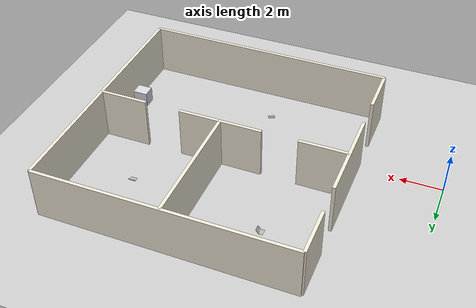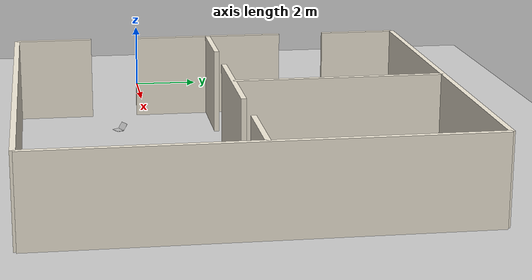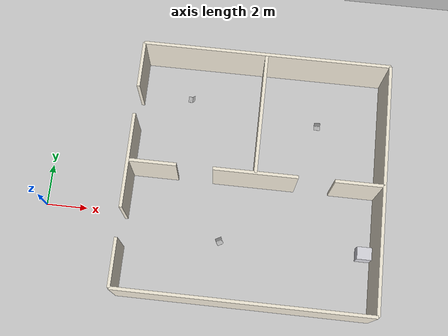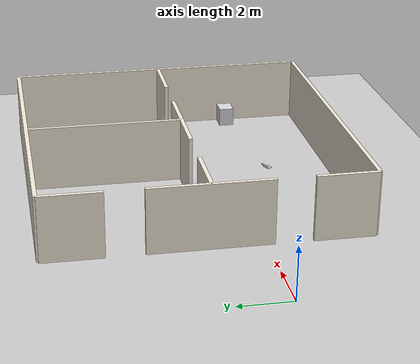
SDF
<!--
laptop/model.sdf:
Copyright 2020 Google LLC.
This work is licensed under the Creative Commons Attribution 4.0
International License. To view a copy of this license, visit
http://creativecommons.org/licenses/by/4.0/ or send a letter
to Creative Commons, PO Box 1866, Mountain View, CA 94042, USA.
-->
<sdf version="1.7">
 <world name="house">
  <light name="sun" type="directional">
   <pose>0 0 10 0 -0 0</pose>
   <diffuse>0.8 0.8 0.8 1</diffuse>
   <specular>0.2 0.2 0.2 1</specular>
   <attenuation>
    <range>1000</range>
    <constant>0.9</constant>
    <linear>0.01</linear>
    <quadratic>0.001</quadratic>
   </attenuation>
   <direction>-0.5 0.1 -0.9</direction>
   <spot><inner_angle>0</inner_angle><outer_angle>0</outer_angle><falloff>0</falloff></spot>
  </light>
  <gravity>0 0 -9.81</gravity>
  <physics type="ode">
   <max_step_size>0.001</max_step_size>
   <real_time_factor>1</real_time_factor>
   <real_time_update_rate>1000</real_time_update_rate>
  </physics>
  <plugin name="gazebo_ros_state" filename="libgazebo_ros_state.so">
   <ros><namespace>/gazebo</namespace></ros>
   <update_rate>1.0</update_rate>
  </plugin>
  <model name="ground_plane">
   <static>1</static>
   <link name="link">
    <collision name="collision">
     <geometry><plane><normal>0 0 1</normal><size>100 100</size></plane></geometry>
     <surface><friction><ode><mu>100</mu><mu2>50</mu2></ode></friction></surface>
    </collision>
    <visual name="visual">
     <cast_shadows>0</cast_shadows>
     <geometry><plane><normal>0 0 1</normal><size>100 100</size></plane></geometry>
     <material>
      <script><uri>file://media/materials/scripts/gazebo.material</uri><name>Gazebo/Grey</name></script>
     </material>
    </visual>
   </link>
  </model>
  <model name="wall_north">
   <static>1</static>
   <pose>10 8 1.25 0 -0 0</pose>
   <link name="link">
    <collision name="c"><geometry><box><size>12 0.15 2.5</size></box></geometry></collision>
    <visual name="v">
     <geometry><box><size>12 0.15 2.5</size></box></geometry>
     <material><ambient>0.95 0.92 0.85 1</ambient><diffuse>0.95 0.92 0.85 1</diffuse></material>
    </visual>
   </link>
  </model>
  <model name="wall_south">
   <static>1</static>
   <pose>10 -4 1.25 0 -0 0</pose>
   <link name="link">
    <collision name="c"><geometry><box><size>12 0.15 2.5</size></box></geometry></collision>
    <visual name="v">
     <geometry><box><size>12 0.15 2.5</size></box></geometry>
     <material><ambient>0.95 0.92 0.85 1</ambient><diffuse>0.95 0.92 0.85 1</diffuse></material>
    </visual>
   </link>
  </model>
  <model name="wall_east">
   <static>1</static>
   <pose>16 2 1.25 0 -0 0</pose>
   <link name="link">
    <collision name="c"><geometry><box><size>0.15 12 2.5</size></box></geometry></collision>
    <visual name="v">
     <geometry><box><size>0.15 12 2.5</size></box></geometry>
     <material><ambient>0.95 0.92 0.85 1</ambient><diffuse>0.95 0.92 0.85 1</diffuse></material>
    </visual>
   </link>
  </model>
  <model name="wall_west_s">
   <static>1</static>
   <pose>4 -2.85 1.25 0 -0 0</pose>
   <link name="link">
    <collision name="c"><geometry><box><size>0.15 2.3 2.5</size></box></geometry></collision>
    <visual name="v">
     <geometry><box><size>0.15 2.3 2.5</size></box></geometry>
     <material><ambient>0.95 0.92 0.85 1</ambient><diffuse>0.95 0.92 0.85 1</diffuse></material>
    </visual>
   </link>
  </model>
  <model name="wall_west_m">
   <static>1</static>
   <pose>4 2 1.25 0 -0 0</pose>
   <link name="link">
    <collision name="c"><geometry><box><size>0.15 4.6 2.5</size></box></geometry></collision>
    <visual name="v">
     <geometry><box><size>0.15 4.6 2.5</size></box></geometry>
     <material><ambient>0.95 0.92 0.85 1</ambient><diffuse>0.95 0.92 0.85 1</diffuse></material>
    </visual>
   </link>
  </model>
  <model name="wall_west_n">
   <static>1</static>
   <pose>4 6.85 1.25 0 -0 0</pose>
   <link name="link">
    <collision name="c"><geometry><box><size>0.15 2.3 2.5</size></box></geometry></collision>
    <visual name="v">
     <geometry><box><size>0.15 2.3 2.5</size></box></geometry>
     <material><ambient>0.95 0.92 0.85 1</ambient><diffuse>0.95 0.92 0.85 1</diffuse></material>
    </visual>
   </link>
  </model>
  <model name="wall_h_1">
   <static>1</static>
   <pose>5.15 2 1.25 0 -0 0</pose>
   <link name="link">
    <collision name="c"><geometry><box><size>2.3 0.15 2.5</size></box></geometry></collision>
    <visual name="v">
     <geometry><box><size>2.3 0.15 2.5</size></box></geometry>
     <material><ambient>0.95 0.92 0.85 1</ambient><diffuse>0.95 0.92 0.85 1</diffuse></material>
    </visual>
   </link>
  </model>
  <model name="wall_h_2">
   <static>1</static>
   <pose>10 2 1.25 0 -0 0</pose>
   <link name="link">
    <collision name="c"><geometry><box><size>4 0.15 2.5</size></box></geometry></collision>
    <visual name="v">
     <geometry><box><size>4 0.15 2.5</size></box></geometry>
     <material><ambient>0.95 0.92 0.85 1</ambient><diffuse>0.95 0.92 0.85 1</diffuse></material>
    </visual>
   </link>
  </model>
  <model name="wall_h_3">
   <static>1</static>
   <pose>14.85 2 1.25 0 -0 0</pose>
   <link name="link">
    <collision name="c"><geometry><box><size>2.3 0.15 2.5</size></box></geometry></collision>
    <visual name="v">
     <geometry><box><size>2.3 0.15 2.5</size></box></geometry>
     <material><ambient>0.95 0.92 0.85 1</ambient><diffuse>0.95 0.92 0.85 1</diffuse></material>
    </visual>
   </link>
  </model>
  <model name="wall_v">
   <static>1</static>
   <pose>10 5 1.25 0 -0 0</pose>
   <link name="link">
    <collision name="c"><geometry><box><size>0.15 6 2.5</size></box></geometry></collision>
    <visual name="v">
     <geometry><box><size>0.15 6 2.5</size></box></geometry>
     <material><ambient>0.95 0.92 0.85 1</ambient><diffuse>0.95 0.92 0.85 1</diffuse></material>
    </visual>
   </link>
  </model>
  <magnetic_field>6e-06 2.3e-05 -4.2e-05</magnetic_field>
  <atmosphere type="adiabatic"/>
  <scene><ambient>0.4 0.4 0.4 1</ambient><background>0.7 0.7 0.7 1</background><shadows>1</shadows></scene>
  <audio><device>default</device></audio>
  <spherical_coordinates>
   <surface_model>EARTH_WGS84</surface_model>
   <latitude_deg>0</latitude_deg>
   <longitude_deg>0</longitude_deg>
   <elevation>0</elevation>
   <heading_deg>0</heading_deg>
  </spherical_coordinates>
  <include><uri>model://laptop</uri><name>demo_laptop</name><pose>8.65 -1.1 0.815 0 0 0.5</pose></include>
  <include><uri>model://mug</uri><name>kitchen_mug</name><pose>12.85 5.2 0.66 0 0 0</pose></include>
  <include><uri>model://teddy_bear</uri><name>bedroom_teddy</name><pose>6.5 6.0 0.63 0 0 -1.57</pose></include>
  <model name="bathroom_counter">
   <static>1</static>
   <pose>15.55 -0.9 0.375 0 0 0</pose>
   <link name="link">
    <collision name="c"><geometry><box><size>0.7 0.6 0.75</size></box></geometry></collision>
    <visual name="v">
     <geometry><box><size>0.7 0.6 0.75</size></box></geometry>
     <material><ambient>0.85 0.85 0.88 1</ambient><diffuse>0.85 0.85 0.88 1</diffuse></material>
    </visual>
   </link>
  </model>
 </world>
</sdf>

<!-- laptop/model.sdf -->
<sdf version="1.6">
  <model name="Lenovo_Yoga_2_11">
    <static>true</static>
    <link name="link_0">
      <visual name="visual">
        <geometry>
          <mesh>
            <uri>meshes/model.obj</uri>
          </mesh>
        </geometry>
      </visual>
      <collision name="collision_0">
        <geometry>
          <mesh>
            <uri>meshes/model.obj</uri>
          </mesh>
        </geometry>
      </collision>
    </link>
  </model>
</sdf>

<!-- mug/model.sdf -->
<sdf version="1.6">
  <model name="ACE_Coffee_Mug_Kristen_16_oz_cup">
    <static>true</static>
    <link name="link_0">
      <visual name="visual">
        <geometry>
          <mesh>
            <uri>meshes/model.obj</uri>
          </mesh>
        </geometry>
      </visual>
      <collision name="collision_0">
        <geometry>
          <mesh>
            <uri>meshes/model.obj</uri>
          </mesh>
        </geometry>
      </collision>
    </link>
  </model>
</sdf>

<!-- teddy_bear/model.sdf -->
<sdf version="1.6">
  <model name="Lovable_Huggable_Cuddly_Boutique_Teddy_Bear_Beige">
    <static>true</static>
    <link name="link_0">
      <visual name="visual">
        <geometry>
          <mesh>
            <uri>meshes/model.obj</uri>
          </mesh>
        </geometry>
      </visual>
      <collision name="collision_0">
        <geometry>
          <mesh>
            <uri>meshes/model.obj</uri>
          </mesh>
        </geometry>
      </collision>
    </link>
  </model>
</sdf>
